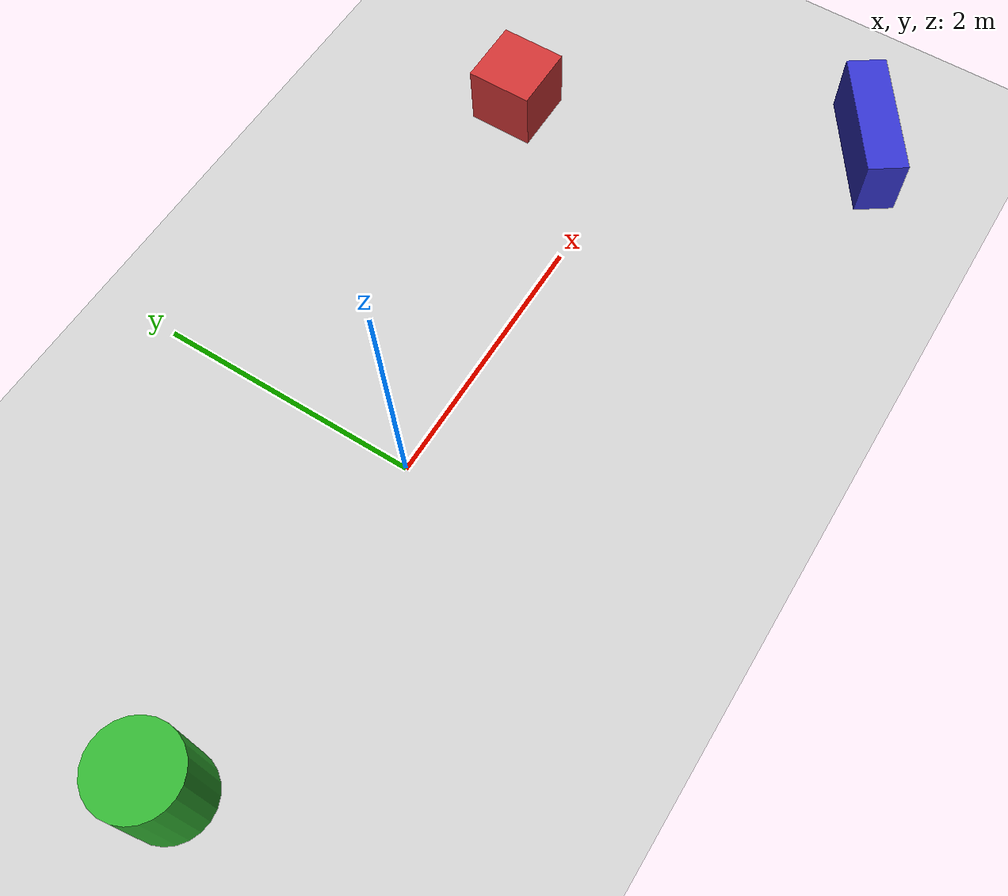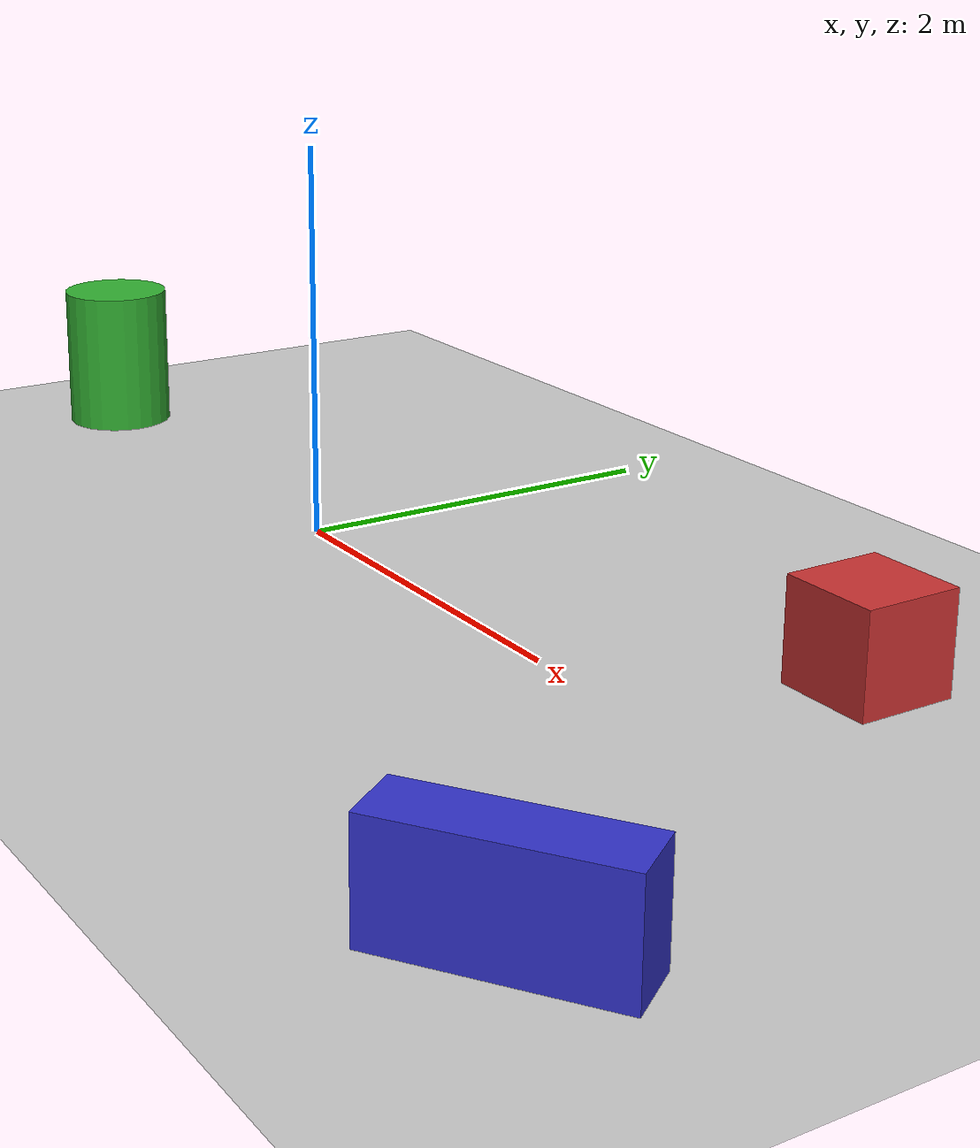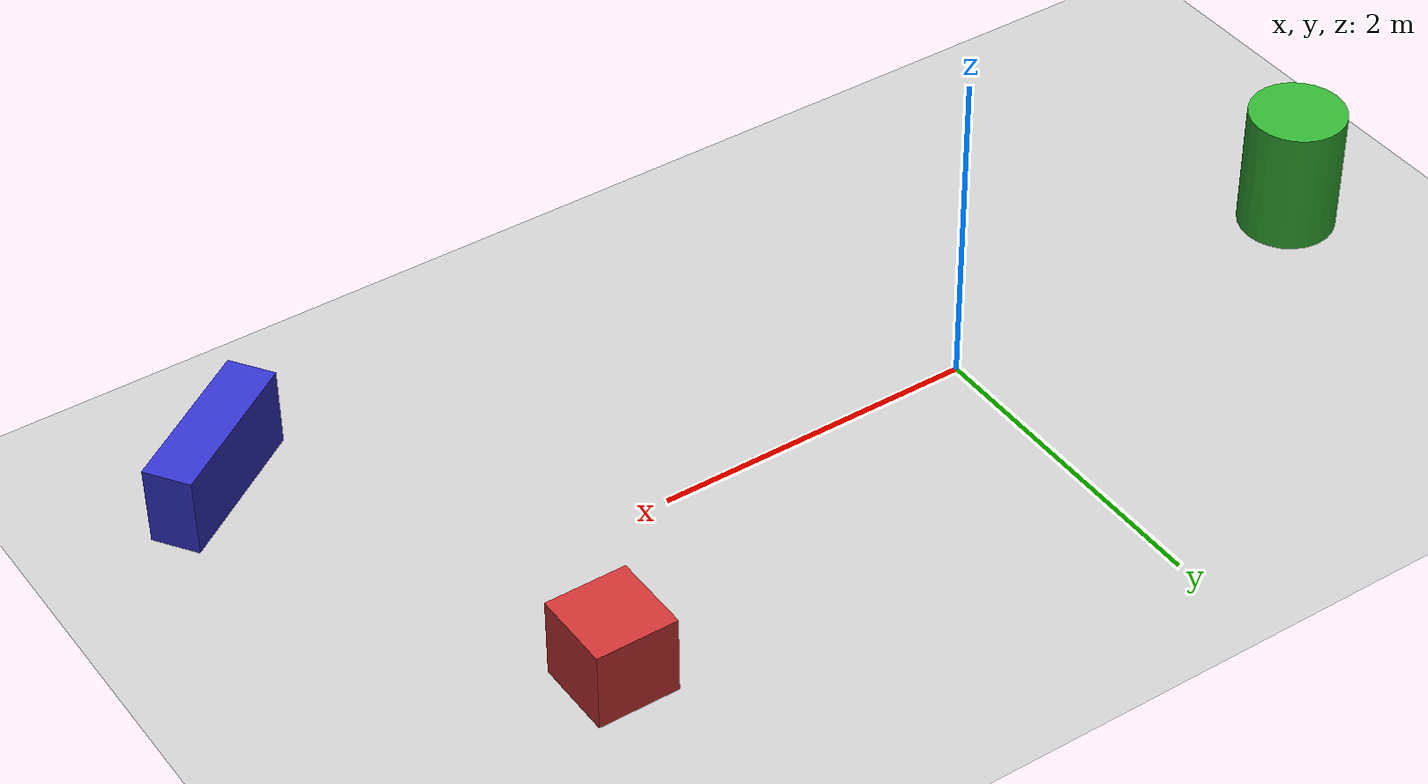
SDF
<?xml version="1.0" ?>
<sdf version="1.8">
  <world name="arena">
    <physics name="1ms" type="ignored">
      <max_step_size>0.001</max_step_size>
      <real_time_factor>1.0</real_time_factor>
    </physics>

    <plugin filename="ignition-gazebo-physics-system" name="ignition::gazebo::systems::Physics"/>
    <plugin filename="ignition-gazebo-user-commands-system" name="ignition::gazebo::systems::UserCommands"/>
    <plugin filename="ignition-gazebo-scene-broadcaster-system" name="ignition::gazebo::systems::SceneBroadcaster"/>
    <plugin filename="ignition-gazebo-sensors-system" name="ignition::gazebo::systems::Sensors">
      <render_engine>ogre2</render_engine>
    </plugin>
    <plugin filename="ignition-gazebo-imu-system" name="ignition::gazebo::systems::Imu"/>

    <gui fullscreen="0">
      <camera name="user_camera">
        <pose>-6 0 5 0 0.6 0</pose>
      </camera>
    </gui>

    <light type="directional" name="sun">
      <cast_shadows>true</cast_shadows>
      <pose>0 0 10 0 0 0</pose>
      <diffuse>0.8 0.8 0.8 1</diffuse>
      <specular>0.2 0.2 0.2 1</specular>
      <direction>-0.5 0.1 -0.9</direction>
    </light>

    <model name="ground_plane">
      <static>true</static>
      <link name="link">
        <collision name="collision">
          <geometry><plane><normal>0 0 1</normal><size>30 30</size></plane></geometry>
        </collision>
        <visual name="visual">
          <geometry><plane><normal>0 0 1</normal><size>30 30</size></plane></geometry>
          <material>
            <ambient>0.8 0.8 0.8 1</ambient>
            <diffuse>0.8 0.8 0.8 1</diffuse>
          </material>
        </visual>
      </link>
    </model>

    <model name="box_obstacle_a">
      <static>true</static>
      <pose>3.0 1.0 0.25 0 0 0</pose>
      <link name="link">
        <collision name="collision"><geometry><box><size>0.5 0.5 0.5</size></box></geometry></collision>
        <visual name="visual">
          <geometry><box><size>0.5 0.5 0.5</size></box></geometry>
          <material><ambient>0.8 0.2 0.2 1</ambient><diffuse>0.8 0.2 0.2 1</diffuse></material>
        </visual>
      </link>
    </model>

    <model name="box_obstacle_b">
      <static>true</static>
      <pose>4.0 -1.5 0.25 0 0 0.6</pose>
      <link name="link">
        <collision name="collision"><geometry><box><size>1.0 0.3 0.5</size></box></geometry></collision>
        <visual name="visual">
          <geometry><box><size>1.0 0.3 0.5</size></box></geometry>
          <material><ambient>0.2 0.2 0.8 1</ambient><diffuse>0.2 0.2 0.8 1</diffuse></material>
        </visual>
      </link>
    </model>

    <model name="cylinder_obstacle">
      <static>true</static>
      <pose>-2.5 0 0.4 0 0 0</pose>
      <link name="link">
        <collision name="collision"><geometry><cylinder><radius>0.3</radius><length>0.8</length></cylinder></geometry></collision>
        <visual name="visual">
          <geometry><cylinder><radius>0.3</radius><length>0.8</length></cylinder></geometry>
          <material><ambient>0.2 0.7 0.2 1</ambient><diffuse>0.2 0.7 0.2 1</diffuse></material>
        </visual>
      </link>
    </model>
  </world>
</sdf>
